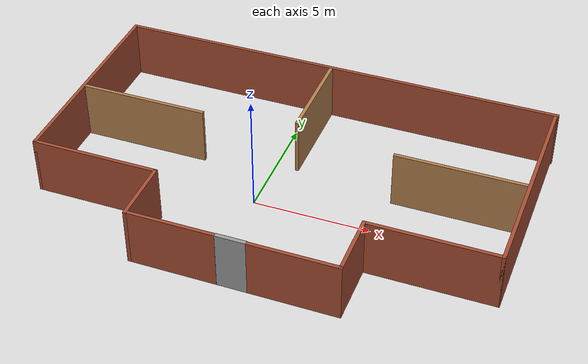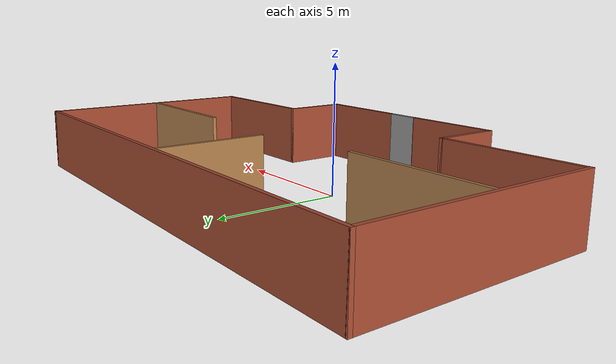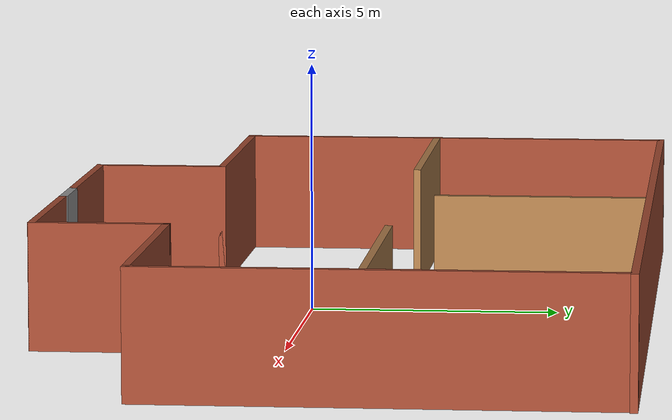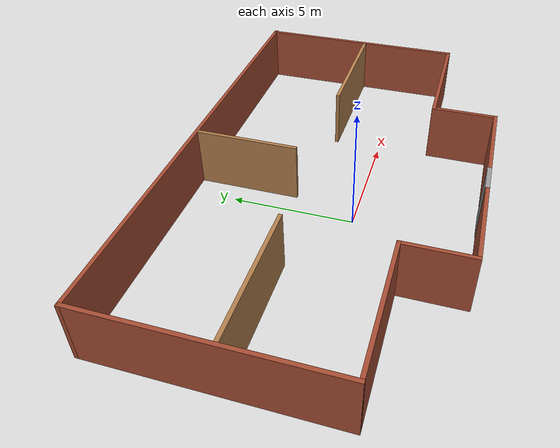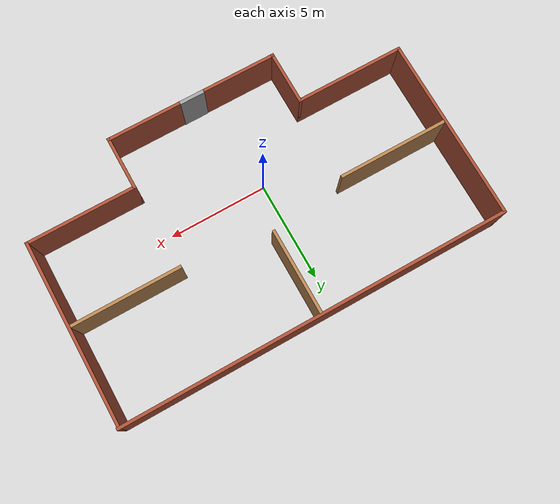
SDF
<?xml version='1.0'?>
<sdf version='1.6'>
  <model name='Building'>
    <pose frame=''>1.13493 1.01705 0 0 -0 0</pose>
    <link name='Door_2'>
      <collision name='Door_2_Collision'>
        <geometry>
          <box>
            <size>1.25 0.17 2.5</size>
          </box>
        </geometry>
        <pose frame=''>0 0 1.25 0 -0 0</pose>
      </collision>
      <visual name='Door_2_Visual'>
        <pose frame=''>0 0 1.25 0 -0 0</pose>
        <geometry>
          <box>
            <size>1.25 0.17 2.5</size>
          </box>
        </geometry>
        <material>
          <script>
            <uri>file://media/materials/scripts/gazebo.material</uri>
            <name>Gazebo/Grey</name>
          </script>
        </material>
      </visual>
      <pose frame=''>-0.023717 -5.83901 0 0 -0 0</pose>
    </link>
    <link name='Wall_111'>
      <collision name='Wall_111_Collision'>
        <geometry>
          <box>
            <size>9.25 0.15 2.5</size>
          </box>
        </geometry>
        <pose frame=''>0 0 1.25 0 -0 0</pose>
      </collision>
      <visual name='Wall_111_Visual'>
        <pose frame=''>0 0 1.25 0 -0 0</pose>
        <geometry>
          <box>
            <size>9.25 0.15 2.5</size>
          </box>
        </geometry>
        <material>
          <script>
            <uri>file://media/materials/scripts/gazebo.material</uri>
            <name>Gazebo/Bricks</name>
          </script>
          <ambient>1 1 1 1</ambient>
        </material>
        <meta>
          <layer>0</layer>
        </meta>
      </visual>
      <pose frame=''>-9.675 1.3 0 0 0 -1.5708</pose>
    </link>
    <link name='Wall_112'>
      <collision name='Wall_112_Collision'>
        <geometry>
          <box>
            <size>5.5 0.15 2.5</size>
          </box>
        </geometry>
        <pose frame=''>0 0 1.25 0 -0 0</pose>
      </collision>
      <visual name='Wall_112_Visual'>
        <pose frame=''>0 0 1.25 0 -0 0</pose>
        <geometry>
          <box>
            <size>5.5 0.15 2.5</size>
          </box>
        </geometry>
        <material>
          <script>
            <uri>file://media/materials/scripts/gazebo.material</uri>
            <name>Gazebo/Bricks</name>
          </script>
          <ambient>1 1 1 1</ambient>
        </material>
        <meta>
          <layer>0</layer>
        </meta>
      </visual>
      <pose frame=''>-7 -3.25 0 0 -0 0</pose>
    </link>
    <link name='Wall_113'>
      <collision name='Wall_113_Collision'>
        <geometry>
          <box>
            <size>2.75 0.15 2.5</size>
          </box>
        </geometry>
        <pose frame=''>0 0 1.25 0 -0 0</pose>
      </collision>
      <visual name='Wall_113_Visual'>
        <pose frame=''>0 0 1.25 0 -0 0</pose>
        <geometry>
          <box>
            <size>2.75 0.15 2.5</size>
          </box>
        </geometry>
        <material>
          <script>
            <uri>file://media/materials/scripts/gazebo.material</uri>
            <name>Gazebo/Bricks</name>
          </script>
          <ambient>1 1 1 1</ambient>
        </material>
        <meta>
          <layer>0</layer>
        </meta>
      </visual>
      <pose frame=''>-4.325 -4.55 0 0 0 -1.5708</pose>
    </link>
    <link name='Wall_115'>
      <collision name='Wall_115_Collision'>
        <geometry>
          <box>
            <size>2.75 0.15 2.5</size>
          </box>
        </geometry>
        <pose frame=''>0 0 1.25 0 -0 0</pose>
      </collision>
      <visual name='Wall_115_Visual'>
        <pose frame=''>0 0 1.25 0 -0 0</pose>
        <geometry>
          <box>
            <size>2.75 0.15 2.5</size>
          </box>
        </geometry>
        <material>
          <script>
            <uri>file://media/materials/scripts/gazebo.material</uri>
            <name>Gazebo/Bricks</name>
          </script>
          <ambient>1 1 1 1</ambient>
        </material>
        <meta>
          <layer>0</layer>
        </meta>
      </visual>
      <pose frame=''>4.275 -4.55 0 0 -0 1.5708</pose>
    </link>
    <link name='Wall_117'>
      <collision name='Wall_117_Collision'>
        <geometry>
          <box>
            <size>5.5 0.15 2.5</size>
          </box>
        </geometry>
        <pose frame=''>0 0 1.25 0 -0 0</pose>
      </collision>
      <visual name='Wall_117_Visual'>
        <pose frame=''>0 0 1.25 0 -0 0</pose>
        <geometry>
          <box>
            <size>5.5 0.15 2.5</size>
          </box>
        </geometry>
        <material>
          <script>
            <uri>file://media/materials/scripts/gazebo.material</uri>
            <name>Gazebo/Bricks</name>
          </script>
          <ambient>1 1 1 1</ambient>
        </material>
        <meta>
          <layer>0</layer>
        </meta>
      </visual>
      <pose frame=''>6.95 -3.25 0 0 -0 0</pose>
    </link>
    <link name='Wall_119'>
      <collision name='Wall_119_Collision'>
        <geometry>
          <box>
            <size>9.25 0.15 2.5</size>
          </box>
        </geometry>
        <pose frame=''>0 0 1.25 0 -0 0</pose>
      </collision>
      <visual name='Wall_119_Visual'>
        <pose frame=''>0 0 1.25 0 -0 0</pose>
        <geometry>
          <box>
            <size>9.25 0.15 2.5</size>
          </box>
        </geometry>
        <material>
          <script>
            <uri>file://media/materials/scripts/gazebo.material</uri>
            <name>Gazebo/Bricks</name>
          </script>
          <ambient>1 1 1 1</ambient>
        </material>
        <meta>
          <layer>0</layer>
        </meta>
      </visual>
      <pose frame=''>9.625 1.3 0 0 -0 1.5708</pose>
    </link>
    <link name='Wall_121'>
      <collision name='Wall_121_Collision'>
        <geometry>
          <box>
            <size>19.5 0.15 2.5</size>
          </box>
        </geometry>
        <pose frame=''>0 0 1.25 0 -0 0</pose>
      </collision>
      <visual name='Wall_121_Visual'>
        <pose frame=''>0 0 1.25 0 -0 0</pose>
        <geometry>
          <box>
            <size>19.5 0.15 2.5</size>
          </box>
        </geometry>
        <material>
          <script>
            <uri>file://media/materials/scripts/gazebo.material</uri>
            <name>Gazebo/Bricks</name>
          </script>
          <ambient>1 1 1 1</ambient>
        </material>
        <meta>
          <layer>0</layer>
        </meta>
      </visual>
      <pose frame=''>0 5.85 0 0 -0 0</pose>
    </link>
    <link name='Wall_123'>
      <collision name='Wall_123_Collision'>
        <geometry>
          <box>
            <size>3.75 0.15 2.5</size>
          </box>
        </geometry>
        <pose frame=''>0 0 1.25 0 -0 0</pose>
      </collision>
      <visual name='Wall_123_Visual'>
        <pose frame=''>0 0 1.25 0 -0 0</pose>
        <geometry>
          <box>
            <size>3.75 0.15 2.5</size>
          </box>
        </geometry>
        <material>
          <script>
            <uri>file://media/materials/scripts/gazebo.material</uri>
            <name>Gazebo/Bricks</name>
          </script>
          <ambient>1 1 1 1</ambient>
        </material>
        <meta>
          <layer>0</layer>
        </meta>
      </visual>
      <pose frame=''>-2.525 -5.85 0 0 -0 0</pose>
    </link>
    <link name='Wall_125'>
      <collision name='Wall_125_Collision'>
        <geometry>
          <box>
            <size>3.75 0.15 2.5</size>
          </box>
        </geometry>
        <pose frame=''>0 0 1.25 0 -0 0</pose>
      </collision>
      <visual name='Wall_125_Visual'>
        <pose frame=''>0 0 1.25 0 -0 0</pose>
        <geometry>
          <box>
            <size>3.75 0.15 2.5</size>
          </box>
        </geometry>
        <material>
          <script>
            <uri>file://media/materials/scripts/gazebo.material</uri>
            <name>Gazebo/Bricks</name>
          </script>
          <ambient>1 1 1 1</ambient>
        </material>
        <meta>
          <layer>0</layer>
        </meta>
      </visual>
      <pose frame=''>2.475 -5.85 0 0 -0 3.14159</pose>
    </link>
    <link name='Wall_129'>
      <collision name='Wall_129_Collision'>
        <geometry>
          <box>
            <size>4.25 0.15 2.5</size>
          </box>
        </geometry>
        <pose frame=''>0 0 1.25 0 -0 0</pose>
      </collision>
      <visual name='Wall_129_Visual'>
        <pose frame=''>0 0 1.25 0 -0 0</pose>
        <geometry>
          <box>
            <size>4.25 0.15 2.5</size>
          </box>
        </geometry>
        <material>
          <script>
            <uri>file://media/materials/scripts/gazebo.material</uri>
            <name>Gazebo/Wood</name>
          </script>
          <ambient>0.435294 0.796078 0.67451 1</ambient>
        </material>
        <meta>
          <layer>0</layer>
        </meta>
      </visual>
      <pose frame=''>-0.218061 3.67477 0 0 0 -1.5708</pose>
    </link>
    <link name='Wall_134'>
      <collision name='Wall_134_Collision'>
        <geometry>
          <box>
            <size>5.5 0.15 2.5</size>
          </box>
        </geometry>
        <pose frame=''>0 0 1.25 0 -0 0</pose>
      </collision>
      <visual name='Wall_134_Visual'>
        <pose frame=''>0 0 1.25 0 -0 0</pose>
        <geometry>
          <box>
            <size>5.5 0.15 2.5</size>
          </box>
        </geometry>
        <material>
          <script>
            <uri>file://media/materials/scripts/gazebo.material</uri>
            <name>Gazebo/Wood</name>
          </script>
          <ambient>0.760784 0.662745 0.627451 1</ambient>
        </material>
        <meta>
          <layer>0</layer>
        </meta>
      </visual>
      <pose frame=''>-6.86169 0.887902 0 0 -0 0</pose>
    </link>
    <link name='Wall_136'>
      <collision name='Wall_136_Collision'>
        <geometry>
          <box>
            <size>5.5 0.15 2.5</size>
          </box>
        </geometry>
        <pose frame=''>0 0 1.25 0 -0 0</pose>
      </collision>
      <visual name='Wall_136_Visual'>
        <pose frame=''>0 0 1.25 0 -0 0</pose>
        <geometry>
          <box>
            <size>5.5 0.15 2.5</size>
          </box>
        </geometry>
        <material>
          <script>
            <uri>file://media/materials/scripts/gazebo.material</uri>
            <name>Gazebo/Wood</name>
          </script>
          <ambient>0.760784 0.662745 0.627451 1</ambient>
        </material>
        <meta>
          <layer>0</layer>
        </meta>
      </visual>
      <pose frame=''>6.86346 1.00246 0 0 -0 3.14159</pose>
    </link>
    <static>1</static>
  </model>
</sdf>
